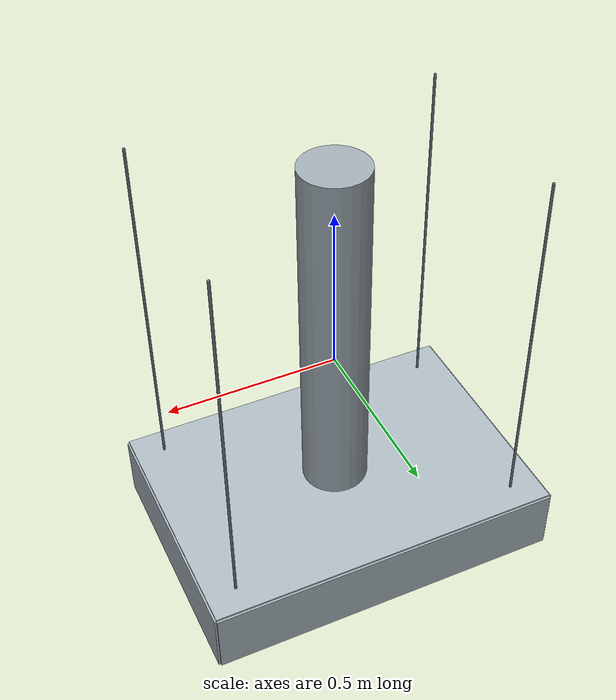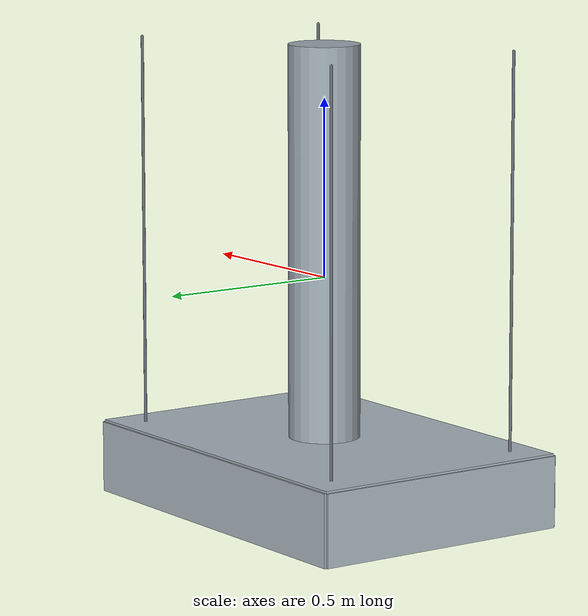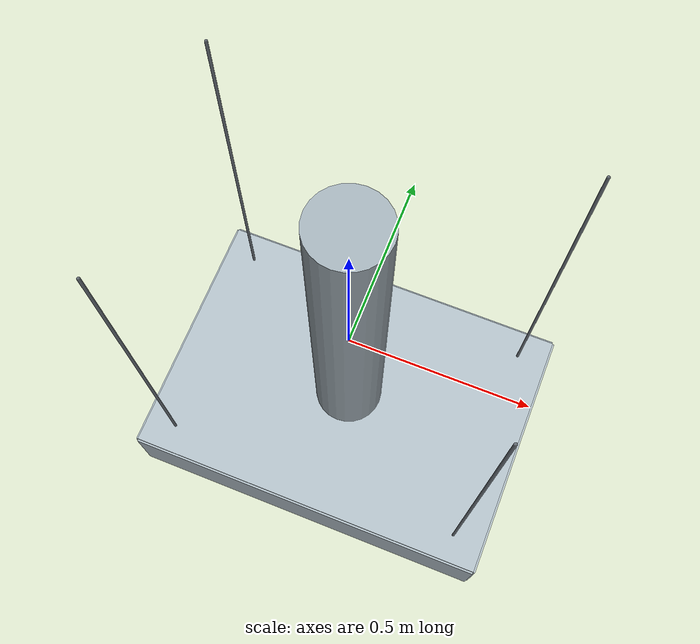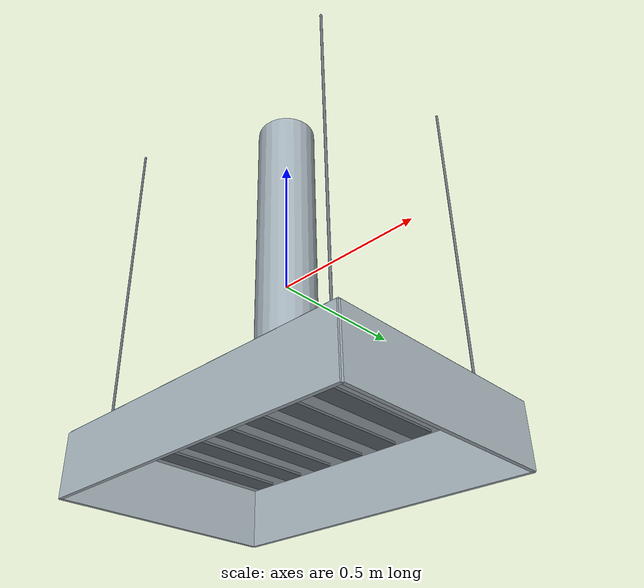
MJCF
<?xml version='1.0' encoding='utf-8'?>
<mujoco model="Canopy hood concept | static procedural reference">
  <visual>
    <global offwidth="1000" offheight="600" />
  </visual>
  <asset>
    <texture type="skybox" builtin="gradient" rgb1=".92 .95 .97" rgb2=".70 .78 .84" width="512" height="3072" />
  </asset>
  <worldbody>
    <geom type="box" size="0.006 0.38 0.1" pos="-0.54 -5.55111512e-17 -0.552" quat="1 0 0 0" rgba="0.670000017 0.720000029 0.75 1" contype="0" conaffinity="0" />
    <geom type="box" size="0.54 0.006 0.1" pos="0 -0.38 -0.552" quat="1 0 0 0" rgba="0.670000017 0.720000029 0.75 1" contype="0" conaffinity="0" />
    <geom type="box" size="0.006 0.38 0.1" pos="0.54 -5.55111512e-17 -0.552" quat="1 0 0 0" rgba="0.670000017 0.720000029 0.75 1" contype="0" conaffinity="0" />
    <geom type="box" size="0.54 0.006 0.1" pos="0 0.38 -0.552" quat="1 0 0 0" rgba="0.670000017 0.720000029 0.75 1" contype="0" conaffinity="0" />
    <geom type="box" size="0.54 0.38 0.006" pos="0 -5.55111512e-17 -0.452" quat="1 0 0 0" rgba="0.670000017 0.720000029 0.75 1" contype="0" conaffinity="0" />
    <geom type="box" size="0.035 0.29 0.004" pos="-0.39 -5.55111512e-17 -0.492" quat="1 0 0 0" rgba="0.379999995 0.430000007 0.460000008 1" contype="0" conaffinity="0" />
    <geom type="box" size="0.035 0.29 0.004" pos="-0.26 -5.55111512e-17 -0.492" quat="1 0 0 0" rgba="0.379999995 0.430000007 0.460000008 1" contype="0" conaffinity="0" />
    <geom type="box" size="0.035 0.29 0.004" pos="-0.13 -5.55111512e-17 -0.492" quat="1 0 0 0" rgba="0.379999995 0.430000007 0.460000008 1" contype="0" conaffinity="0" />
    <geom type="box" size="0.035 0.29 0.004" pos="0 -5.55111512e-17 -0.492" quat="1 0 0 0" rgba="0.379999995 0.430000007 0.460000008 1" contype="0" conaffinity="0" />
    <geom type="box" size="0.035 0.29 0.004" pos="0.13 -5.55111512e-17 -0.492" quat="1 0 0 0" rgba="0.379999995 0.430000007 0.460000008 1" contype="0" conaffinity="0" />
    <geom type="box" size="0.035 0.29 0.004" pos="0.26 -5.55111512e-17 -0.492" quat="1 0 0 0" rgba="0.379999995 0.430000007 0.460000008 1" contype="0" conaffinity="0" />
    <geom type="box" size="0.035 0.29 0.004" pos="0.39 -5.55111512e-17 -0.492" quat="1 0 0 0" rgba="0.379999995 0.430000007 0.460000008 1" contype="0" conaffinity="0" />
    <geom type="box" size="0.38 0.012 0.005" pos="0 -0.29 -0.512" quat="1 0 0 0" rgba="0.949999988 0.980000019 1 1" contype="0" conaffinity="0" />
    <geom type="cylinder" size="0.1 0.55" pos="0 -5.55111512e-17 0.098" quat="1 0 0 0" rgba="0.620000005 0.670000017 0.699999988 1" contype="0" conaffinity="0" />
    <geom type="capsule" size="0.004 0.55" pos="-0.45 -0.3 0.098" quat="6.123234e-17 1 0 0" rgba="0.400000006 0.430000007 0.460000008 1" contype="0" conaffinity="0" />
    <geom type="capsule" size="0.004 0.55" pos="-0.45 0.3 0.098" quat="6.123234e-17 1 0 0" rgba="0.400000006 0.430000007 0.460000008 1" contype="0" conaffinity="0" />
    <geom type="capsule" size="0.004 0.55" pos="0.45 -0.3 0.098" quat="6.123234e-17 1 0 0" rgba="0.400000006 0.430000007 0.460000008 1" contype="0" conaffinity="0" />
    <geom type="capsule" size="0.004 0.55" pos="0.45 0.3 0.098" quat="6.123234e-17 1 0 0" rgba="0.400000006 0.430000007 0.460000008 1" contype="0" conaffinity="0" />
  </worldbody>
</mujoco>
